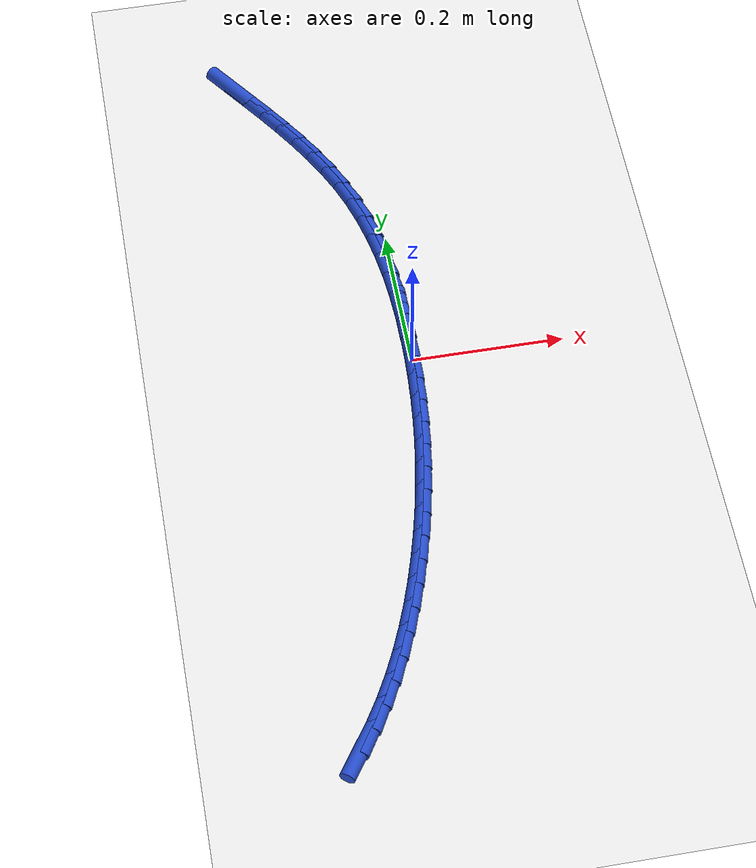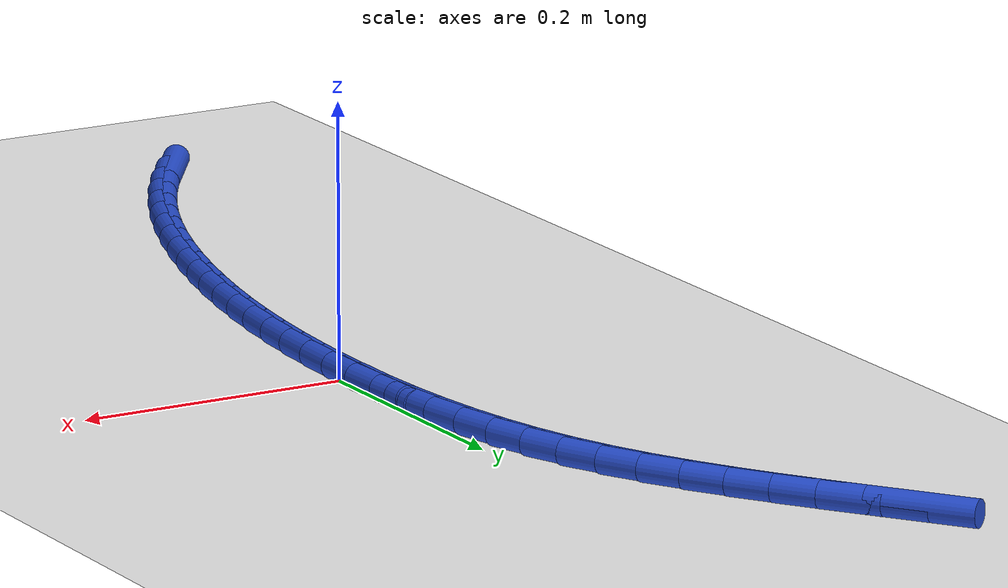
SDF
<sdf version="1.6">
 <world name="default">
  <model name="ground_plane">
   <static>1</static>
   <link name="link">
    <collision name="collision">
     <geometry><plane><normal>0 0 1</normal><size>100 100</size></plane></geometry>
     <surface><friction><ode><mu>100</mu><mu2>50</mu2></ode></friction></surface>
    </collision>
    <visual name="visual">
     <cast_shadows>0</cast_shadows>
     <geometry><plane><normal>0 0 1</normal><size>100 100</size></plane></geometry>
     <material>
      <script><uri>file://media/materials/scripts/gazebo.material</uri><name>Gazebo/WhiteGlow</name></script>
     </material>
    </visual>
   </link>
  </model>
  <model name="line">
   <link name="link_0">
    <pose>9.107298248878237e-18 3.469446951953614e-17 0.01 0 1.57 1.5611285611488255</pose>
    <collision name="collision">
     <geometry><cylinder><radius>0.01</radius><length>0.08</length></cylinder></geometry>
    </collision>
    <visual name="visual">
     <material>
      <script><name>Gazebo/Blue</name><uri>file://media/materials/scripts/gazebo.material</uri></script>
     </material>
     <geometry><cylinder><radius>0.01</radius><length>0.08</length></cylinder></geometry>
    </visual>
   </link>
   <link name="link_1">
    <pose>0.00032561232508654137 0.03367915528946267 0.01 0 1.57 -1.5499684981782071</pose>
    <collision name="collision">
     <geometry><cylinder><radius>0.01</radius><length>0.08</length></cylinder></geometry>
    </collision>
    <visual name="visual">
     <material>
      <script><name>Gazebo/Blue</name><uri>file://media/materials/scripts/gazebo.material</uri></script>
     </material>
     <geometry><cylinder><radius>0.01</radius><length>0.08</length></cylinder></geometry>
    </visual>
   </link>
   <link name="link_2">
    <pose>-0.00037754978675397867 0.0674349752053072 0.01 0 1.57 -1.515329528181096</pose>
    <collision name="collision">
     <geometry><cylinder><radius>0.01</radius><length>0.08</length></cylinder></geometry>
    </collision>
    <visual name="visual">
     <material>
      <script><name>Gazebo/Blue</name><uri>file://media/materials/scripts/gazebo.material</uri></script>
     </material>
     <geometry><cylinder><radius>0.01</radius><length>0.08</length></cylinder></geometry>
    </visual>
   </link>
   <link name="link_3">
    <pose>-0.0022486380866745884 0.10113385653426568 0.01 0 1.57 -1.4762321920403072</pose>
    <collision name="collision">
     <geometry><cylinder><radius>0.01</radius><length>0.08</length></cylinder></geometry>
    </collision>
    <visual name="visual">
     <material>
      <script><name>Gazebo/Blue</name><uri>file://media/materials/scripts/gazebo.material</uri></script>
     </material>
     <geometry><cylinder><radius>0.01</radius><length>0.08</length></cylinder></geometry>
    </visual>
   </link>
   <link name="link_4">
    <pose>-0.00542680432582833 0.13464219606307032 0.01 0 1.57 -1.4323326726854175</pose>
    <collision name="collision">
     <geometry><cylinder><radius>0.01</radius><length>0.08</length></cylinder></geometry>
    </collision>
    <visual name="visual">
     <material>
      <script><name>Gazebo/Blue</name><uri>file://media/materials/scripts/gazebo.material</uri></script>
     </material>
     <geometry><cylinder><radius>0.01</radius><length>0.08</length></cylinder></geometry>
    </visual>
   </link>
   <link name="link_5">
    <pose>-0.010051200255368247 0.1678263905784531 0.01 0 1.57 -1.3832776218806389</pose>
    <collision name="collision">
     <geometry><cylinder><radius>0.01</radius><length>0.08</length></cylinder></geometry>
    </collision>
    <visual name="visual">
     <material>
      <script><name>Gazebo/Blue</name><uri>file://media/materials/scripts/gazebo.material</uri></script>
     </material>
     <geometry><cylinder><radius>0.01</radius><length>0.08</length></cylinder></geometry>
    </visual>
   </link>
   <link name="link_6">
    <pose>-0.016260977626447366 0.2005528368671461 0.01 0 1.57 -1.3287328669685963</pose>
    <collision name="collision">
     <geometry><cylinder><radius>0.01</radius><length>0.08</length></cylinder></geometry>
    </collision>
    <visual name="visual">
     <material>
      <script><name>Gazebo/Blue</name><uri>file://media/materials/scripts/gazebo.material</uri></script>
     </material>
     <geometry><cylinder><radius>0.01</radius><length>0.08</length></cylinder></geometry>
    </visual>
   </link>
   <link name="link_7">
    <pose>-0.02419528819021874 0.23268793171588148 0.01 0 1.57 -1.2684241439287702</pose>
    <collision name="collision">
     <geometry><cylinder><radius>0.01</radius><length>0.08</length></cylinder></geometry>
    </collision>
    <visual name="visual">
     <material>
      <script><name>Gazebo/Blue</name><uri>file://media/materials/scripts/gazebo.material</uri></script>
     </material>
     <geometry><cylinder><radius>0.01</radius><length>0.08</length></cylinder></geometry>
    </visual>
   </link>
   <link name="link_8">
    <pose>-0.0339932836978354 0.26409807191139123 0.01 0 1.57 -1.2023822367100183</pose>
    <collision name="collision">
     <geometry><cylinder><radius>0.01</radius><length>0.08</length></cylinder></geometry>
    </collision>
    <visual name="visual">
     <material>
      <script><name>Gazebo/Blue</name><uri>file://media/materials/scripts/gazebo.material</uri></script>
     </material>
     <geometry><cylinder><radius>0.01</radius><length>0.08</length></cylinder></geometry>
    </visual>
   </link>
   <link name="link_9">
    <pose>-0.04578873210994426 0.2946530786457331 0.01 0 1.57 -1.1371002337295038</pose>
    <collision name="collision">
     <geometry><cylinder><radius>0.01</radius><length>0.08</length></cylinder></geometry>
    </collision>
    <visual name="visual">
     <material>
      <script><name>Gazebo/Blue</name><uri>file://media/materials/scripts/gazebo.material</uri></script>
     </material>
     <geometry><cylinder><radius>0.01</radius><length>0.08</length></cylinder></geometry>
    </visual>
   </link>
   <link name="link_10">
    <pose>-0.059535509868876395 0.3243371946272946 0.01 0 1.57 -1.0808007374368802</pose>
    <collision name="collision">
     <geometry><cylinder><radius>0.01</radius><length>0.08</length></cylinder></geometry>
    </collision>
    <visual name="visual">
     <material>
      <script><name>Gazebo/Blue</name><uri>file://media/materials/scripts/gazebo.material</uri></script>
     </material>
     <geometry><cylinder><radius>0.01</radius><length>0.08</length></cylinder></geometry>
    </visual>
   </link>
   <link name="link_11">
    <pose>-0.0749695237020573 0.3532733040386539 0.01 0 1.57 -1.0342158421964478</pose>
    <collision name="collision">
     <geometry><cylinder><radius>0.01</radius><length>0.08</length></cylinder></geometry>
    </collision>
    <visual name="visual">
     <material>
      <script><name>Gazebo/Blue</name><uri>file://media/materials/scripts/gazebo.material</uri></script>
     </material>
     <geometry><cylinder><radius>0.01</radius><length>0.08</length></cylinder></geometry>
    </visual>
   </link>
   <link name="link_12">
    <pose>-0.09181359279044954 0.3815926155066173 0.01 0 1.57 -0.9973304996377963</pose>
    <collision name="collision">
     <geometry><cylinder><radius>0.01</radius><length>0.08</length></cylinder></geometry>
    </collision>
    <visual name="visual">
     <material>
      <script><name>Gazebo/Blue</name><uri>file://media/materials/scripts/gazebo.material</uri></script>
     </material>
     <geometry><cylinder><radius>0.01</radius><length>0.08</length></cylinder></geometry>
    </visual>
   </link>
   <link name="link_13">
    <pose>-0.1097905363150157 0.4094263376579907 0.01 0 1.57 -0.9699785528373828</pose>
    <collision name="collision">
     <geometry><cylinder><radius>0.01</radius><length>0.08</length></cylinder></geometry>
    </collision>
    <visual name="visual">
     <material>
      <script><name>Gazebo/Blue</name><uri>file://media/materials/scripts/gazebo.material</uri></script>
     </material>
     <geometry><cylinder><radius>0.01</radius><length>0.08</length></cylinder></geometry>
    </visual>
   </link>
   <link name="link_14">
    <pose>-0.1286231734567183 0.4369056791195802 0.01 0 1.57 -0.9519461760253578</pose>
    <collision name="collision">
     <geometry><cylinder><radius>0.01</radius><length>0.08</length></cylinder></geometry>
    </collision>
    <visual name="visual">
     <material>
      <script><name>Gazebo/Blue</name><uri>file://media/materials/scripts/gazebo.material</uri></script>
     </material>
     <geometry><cylinder><radius>0.01</radius><length>0.08</length></cylinder></geometry>
    </visual>
   </link>
   <link name="link_15">
    <pose>-0.14803432339652003 0.4641618485181921 0.01 0 1.57 -0.943043501567155</pose>
    <collision name="collision">
     <geometry><cylinder><radius>0.01</radius><length>0.08</length></cylinder></geometry>
    </collision>
    <visual name="visual">
     <material>
      <script><name>Gazebo/Blue</name><uri>file://media/materials/scripts/gazebo.material</uri></script>
     </material>
     <geometry><cylinder><radius>0.01</radius><length>0.08</length></cylinder></geometry>
    </visual>
   </link>
   <link name="link_16">
    <pose>-0.16774680531538338 0.49132605448063243 0.01 0 1.57 -0.9431477312933013</pose>
    <collision name="collision">
     <geometry><cylinder><radius>0.01</radius><length>0.08</length></cylinder></geometry>
    </collision>
    <visual name="visual">
     <material>
      <script><name>Gazebo/Blue</name><uri>file://media/materials/scripts/gazebo.material</uri></script>
     </material>
     <geometry><cylinder><radius>0.01</radius><length>0.08</length></cylinder></geometry>
    </visual>
   </link>
   <link name="link_203">
    <pose>-0.15587368803902638 -0.536744601156508 0.01 0 1.57 0.9695334490025153</pose>
    <collision name="collision">
     <geometry><cylinder><radius>0.01</radius><length>0.08</length></cylinder></geometry>
    </collision>
    <visual name="visual">
     <material>
      <script><name>Gazebo/Blue</name><uri>file://media/materials/scripts/gazebo.material</uri></script>
     </material>
     <geometry><cylinder><radius>0.01</radius><length>0.08</length></cylinder></geometry>
    </visual>
   </link>
   <link name="link_204">
    <pose>-0.13720940857770805 -0.5095368941418927 0.01 0 1.57 1.0257075744069468</pose>
    <collision name="collision">
     <geometry><cylinder><radius>0.01</radius><length>0.08</length></cylinder></geometry>
    </collision>
    <visual name="visual">
     <material>
      <script><name>Gazebo/Blue</name><uri>file://media/materials/scripts/gazebo.material</uri></script>
     </material>
     <geometry><cylinder><radius>0.01</radius><length>0.08</length></cylinder></geometry>
    </visual>
   </link>
   <link name="link_205">
    <pose>-0.12003346559226874 -0.48121095838497785 0.01 0 1.57 1.077467329747607</pose>
    <collision name="collision">
     <geometry><cylinder><radius>0.01</radius><length>0.08</length></cylinder></geometry>
    </collision>
    <visual name="visual">
     <material>
      <script><name>Gazebo/Blue</name><uri>file://media/materials/scripts/gazebo.material</uri></script>
     </material>
     <geometry><cylinder><radius>0.01</radius><length>0.08</length></cylinder></geometry>
    </visual>
   </link>
   <link name="link_206">
    <pose>-0.10427631186405766 -0.45190469474520384 0.01 0 1.57 1.124988496325104</pose>
    <collision name="collision">
     <geometry><cylinder><radius>0.01</radius><length>0.08</length></cylinder></geometry>
    </collision>
    <visual name="visual">
     <material>
      <script><name>Gazebo/Blue</name><uri>file://media/materials/scripts/gazebo.material</uri></script>
     </material>
     <geometry><cylinder><radius>0.01</radius><length>0.08</length></cylinder></geometry>
    </visual>
   </link>
   <link name="link_207">
    <pose>-0.08986840017442356 -0.4217560040820107 0.01 0 1.57 1.1684975004559655</pose>
    <collision name="collision">
     <geometry><cylinder><radius>0.01</radius><length>0.08</length></cylinder></geometry>
    </collision>
    <visual name="visual">
     <material>
      <script><name>Gazebo/Blue</name><uri>file://media/materials/scripts/gazebo.material</uri></script>
     </material>
     <geometry><cylinder><radius>0.01</radius><length>0.08</length></cylinder></geometry>
    </visual>
   </link>
   <link name="link_208">
    <pose>-0.07674018330471637 -0.3909027872548409 0.01 0 1.57 1.2082465772229447</pose>
    <collision name="collision">
     <geometry><cylinder><radius>0.01</radius><length>0.08</length></cylinder></geometry>
    </collision>
    <visual name="visual">
     <material>
      <script><name>Gazebo/Blue</name><uri>file://media/materials/scripts/gazebo.material</uri></script>
     </material>
     <geometry><cylinder><radius>0.01</radius><length>0.08</length></cylinder></geometry>
    </visual>
   </link>
   <link name="link_209">
    <pose>-0.06482211403628481 -0.3594829451231343 0.01 0 1.57 1.244495148605766</pose>
    <collision name="collision">
     <geometry><cylinder><radius>0.01</radius><length>0.08</length></cylinder></geometry>
    </collision>
    <visual name="visual">
     <material>
      <script><name>Gazebo/Blue</name><uri>file://media/materials/scripts/gazebo.material</uri></script>
     </material>
     <geometry><cylinder><radius>0.01</radius><length>0.08</length></cylinder></geometry>
    </visual>
   </link>
   <link name="link_210">
    <pose>-0.05404464515047809 -0.32763437854633176 0.01 0 1.57 1.2774965600867174</pose>
    <collision name="collision">
     <geometry><cylinder><radius>0.01</radius><length>0.08</length></cylinder></geometry>
    </collision>
    <visual name="visual">
     <material>
      <script><name>Gazebo/Blue</name><uri>file://media/materials/scripts/gazebo.material</uri></script>
     </material>
     <geometry><cylinder><radius>0.01</radius><length>0.08</length></cylinder></geometry>
    </visual>
   </link>
   <link name="link_211">
    <pose>-0.04433822942864534 -0.295494988383874 0.01 0 1.57 1.3075804938238165</pose>
    <collision name="collision">
     <geometry><cylinder><radius>0.01</radius><length>0.08</length></cylinder></geometry>
    </collision>
    <visual name="visual">
     <material>
      <script><name>Gazebo/Blue</name><uri>file://media/materials/scripts/gazebo.material</uri></script>
     </material>
     <geometry><cylinder><radius>0.01</radius><length>0.08</length></cylinder></geometry>
    </visual>
   </link>
   <link name="link_212">
    <pose>-0.03563520442382549 -0.2631979146224355 0.01 0 1.57 1.3364280705566725</pose>
    <collision name="collision">
     <geometry><cylinder><radius>0.01</radius><length>0.08</length></cylinder></geometry>
    </collision>
    <visual name="visual">
     <material>
      <script><name>Gazebo/Blue</name><uri>file://media/materials/scripts/gazebo.material</uri></script>
     </material>
     <geometry><cylinder><radius>0.01</radius><length>0.08</length></cylinder></geometry>
    </visual>
   </link>
   <link name="link_213">
    <pose>-0.02789929807602542 -0.23079700613921442 0.01 0 1.57 1.365256018232253</pose>
    <collision name="collision">
     <geometry><cylinder><radius>0.01</radius><length>0.08</length></cylinder></geometry>
    </collision>
    <visual name="visual">
     <material>
      <script><name>Gazebo/Blue</name><uri>file://media/materials/scripts/gazebo.material</uri></script>
     </material>
     <geometry><cylinder><radius>0.01</radius><length>0.08</length></cylinder></geometry>
    </visual>
   </link>
   <link name="link_214">
    <pose>-0.021120144971844498 -0.19828067245401995 0.01 0 1.57 1.394014127791645</pose>
    <collision name="collision">
     <geometry><cylinder><radius>0.01</radius><length>0.08</length></cylinder></geometry>
    </collision>
    <visual name="visual">
     <material>
      <script><name>Gazebo/Blue</name><uri>file://media/materials/scripts/gazebo.material</uri></script>
     </material>
     <geometry><cylinder><radius>0.01</radius><length>0.08</length></cylinder></geometry>
    </visual>
   </link>
   <link name="link_215">
    <pose>-0.015288155031590575 -0.1656353646186127 0.01 0 1.57 1.422615101359361</pose>
    <collision name="collision">
     <geometry><cylinder><radius>0.01</radius><length>0.08</length></cylinder></geometry>
    </collision>
    <visual name="visual">
     <material>
      <script><name>Gazebo/Blue</name><uri>file://media/materials/scripts/gazebo.material</uri></script>
     </material>
     <geometry><cylinder><radius>0.01</radius><length>0.08</length></cylinder></geometry>
    </visual>
   </link>
   <link name="link_216">
    <pose>-0.010393738175571366 -0.13284753368475233 0.01 0 1.57 1.4509734587551604</pose>
    <collision name="collision">
     <geometry><cylinder><radius>0.01</radius><length>0.08</length></cylinder></geometry>
    </collision>
    <visual name="visual">
     <material>
      <script><name>Gazebo/Blue</name><uri>file://media/materials/scripts/gazebo.material</uri></script>
     </material>
     <geometry><cylinder><radius>0.01</radius><length>0.08</length></cylinder></geometry>
    </visual>
   </link>
   <link name="link_217">
    <pose>-0.006427304324094949 -0.0999036307042009 0.01 0 1.57 1.4790067645312686</pose>
    <collision name="collision">
     <geometry><cylinder><radius>0.01</radius><length>0.08</length></cylinder></geometry>
    </collision>
    <visual name="visual">
     <material>
      <script><name>Gazebo/Blue</name><uri>file://media/materials/scripts/gazebo.material</uri></script>
     </material>
     <geometry><cylinder><radius>0.01</radius><length>0.08</length></cylinder></geometry>
    </visual>
   </link>
   <link name="link_218">
    <pose>-0.0033792633974690303 -0.0667901067287182 0.01 0 1.57 1.5066367461466996</pose>
    <collision name="collision">
     <geometry><cylinder><radius>0.01</radius><length>0.08</length></cylinder></geometry>
    </collision>
    <visual name="visual">
     <material>
      <script><name>Gazebo/Blue</name><uri>file://media/materials/scripts/gazebo.material</uri></script>
     </material>
     <geometry><cylinder><radius>0.01</radius><length>0.08</length></cylinder></geometry>
    </visual>
   </link>
   <link name="link_219">
    <pose>-0.001240025316001438 -0.03349341281006467 0.01 0 1.57 1.533790267689712</pose>
    <collision name="collision">
     <geometry><cylinder><radius>0.01</radius><length>0.08</length></cylinder></geometry>
    </collision>
    <visual name="visual">
     <material>
      <script><name>Gazebo/Blue</name><uri>file://media/materials/scripts/gazebo.material</uri></script>
     </material>
     <geometry><cylinder><radius>0.01</radius><length>0.08</length></cylinder></geometry>
    </visual>
   </link>
   <link name="link_220">
    <pose>6.938893903907228e-18 6.938893903907228e-18 0.01 0 1.57 1.5604001326866084</pose>
    <collision name="collision">
     <geometry><cylinder><radius>0.01</radius><length>0.08</length></cylinder></geometry>
    </collision>
    <visual name="visual">
     <material>
      <script><name>Gazebo/Blue</name><uri>file://media/materials/scripts/gazebo.material</uri></script>
     </material>
     <geometry><cylinder><radius>0.01</radius><length>0.08</length></cylinder></geometry>
    </visual>
   </link>
   <link name="link_221">
    <pose>0.0003504026302274064 0.03370368064971282 0.01 0 1.57 -1.5551869538694982</pose>
    <collision name="collision">
     <geometry><cylinder><radius>0.01</radius><length>0.08</length></cylinder></geometry>
    </collision>
    <visual name="visual">
     <material>
      <script><name>Gazebo/Blue</name><uri>file://media/materials/scripts/gazebo.material</uri></script>
     </material>
     <geometry><cylinder><radius>0.01</radius><length>0.08</length></cylinder></geometry>
    </visual>
   </link>
   <link name="link_222">
    <pose>-0.00017922734562702929 0.06763117808731664 0.01 0 1.57 -1.5681462631536283</pose>
    <collision name="collision">
     <geometry><cylinder><radius>0.01</radius><length>0.08</length></cylinder></geometry>
    </collision>
    <visual name="visual">
     <material>
      <script><name>Gazebo/Blue</name><uri>file://media/materials/scripts/gazebo.material</uri></script>
     </material>
     <geometry><cylinder><radius>0.01</radius><length>0.08</length></cylinder></geometry>
    </visual>
   </link>
  </model>
 </world>
</sdf>
